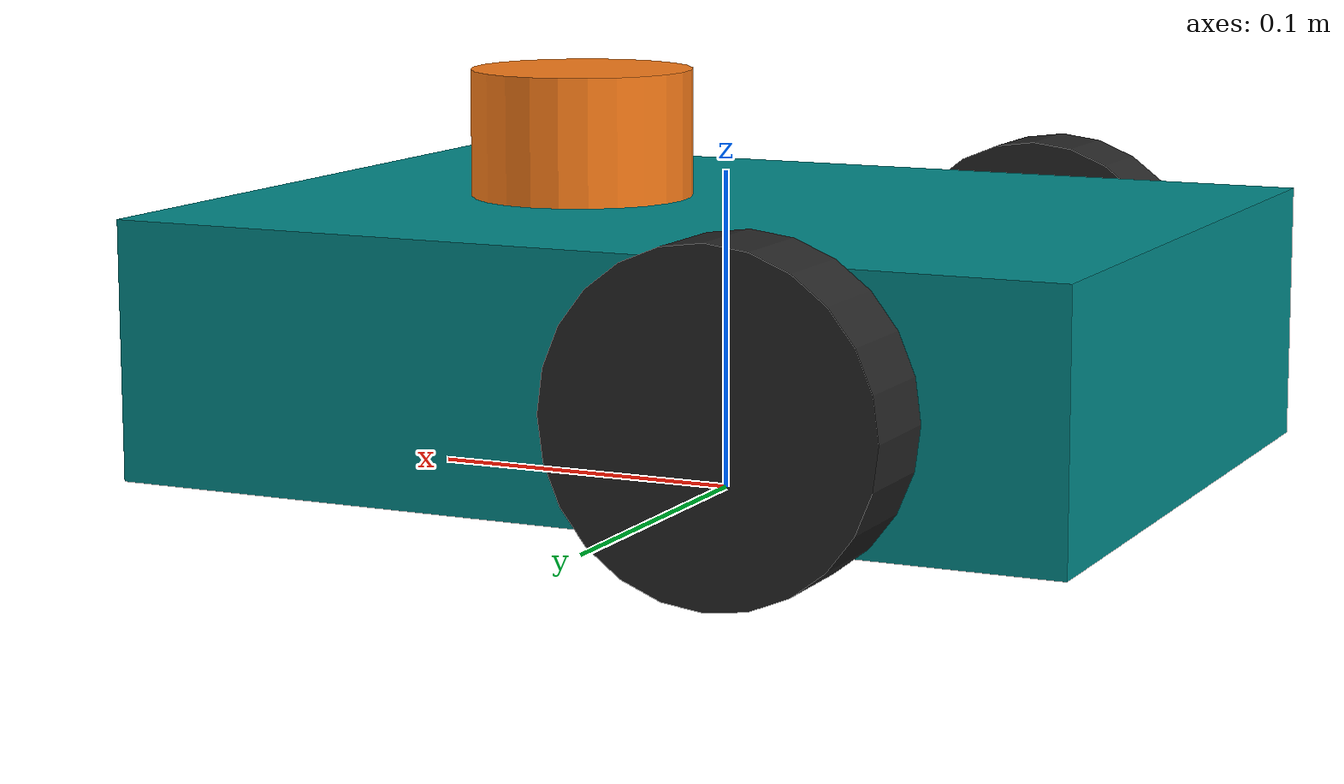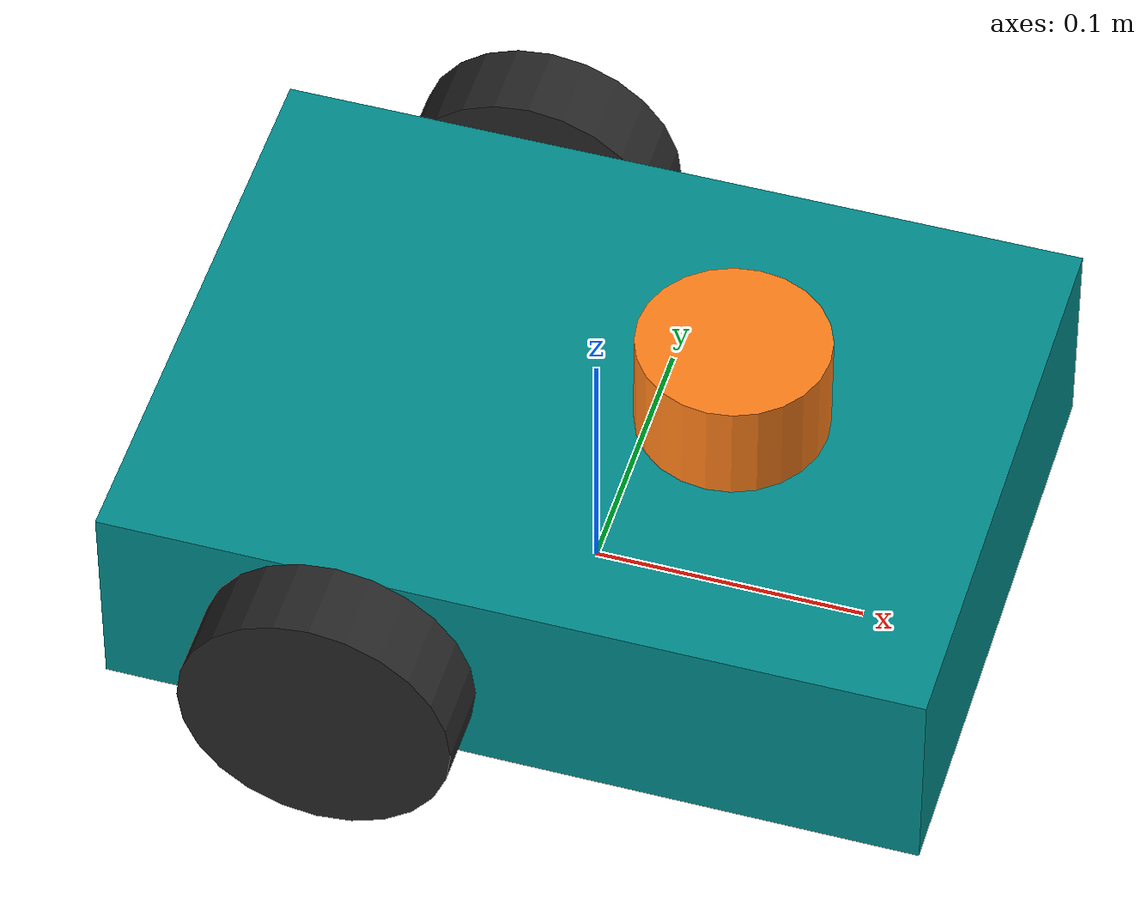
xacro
<?xml version="1.0"?>
<robot name="diffbot" xmlns:xacro="http://www.ros.org/wiki/xacro">

  <!-- ===== Dimensions [m, kg] ===== -->
  <xacro:property name="base_length" value="0.30"/>
  <xacro:property name="base_width" value="0.22"/>
  <xacro:property name="base_height" value="0.08"/>
  <xacro:property name="base_mass" value="2.0"/>
  <xacro:property name="wheel_radius" value="0.05"/>
  <xacro:property name="wheel_width" value="0.03"/>
  <xacro:property name="wheel_mass" value="0.2"/>
  <xacro:property name="wheel_separation" value="0.26"/>
  <xacro:property name="wheel_x_offset" value="-0.06"/>
  <xacro:property name="caster_radius" value="0.025"/>
  <xacro:property name="base_z" value="${wheel_radius}"/>

  <!-- ===== Inertia helpers ===== -->
  <xacro:macro name="box_inertia" params="m x y z">
    <inertia ixx="${m*(y*y+z*z)/12}" ixy="0" ixz="0"
             iyy="${m*(x*x+z*z)/12}" iyz="0" izz="${m*(x*x+y*y)/12}"/>
  </xacro:macro>
  <xacro:macro name="cylinder_inertia" params="m r h">
    <inertia ixx="${m*(3*r*r+h*h)/12}" ixy="0" ixz="0"
             iyy="${m*(3*r*r+h*h)/12}" iyz="0" izz="${m*r*r/2}"/>
  </xacro:macro>
  <xacro:macro name="sphere_inertia" params="m r">
    <inertia ixx="${2*m*r*r/5}" ixy="0" ixz="0" iyy="${2*m*r*r/5}" iyz="0" izz="${2*m*r*r/5}"/>
  </xacro:macro>

  <!-- ===== Materials ===== -->
  <material name="teal"><color rgba="0.0 0.55 0.55 1.0"/></material>
  <material name="dark"><color rgba="0.15 0.15 0.15 1.0"/></material>
  <material name="orange"><color rgba="1.0 0.5 0.1 1.0"/></material>

  <!-- ===== Links ===== -->
  <link name="base_footprint"/>

  <link name="base_link">
    <visual>
      <geometry><box size="${base_length} ${base_width} ${base_height}"/></geometry>
      <material name="teal"/>
    </visual>
    <collision>
      <geometry><box size="${base_length} ${base_width} ${base_height}"/></geometry>
    </collision>
    <inertial>
      <mass value="${base_mass}"/>
      <xacro:box_inertia m="${base_mass}" x="${base_length}" y="${base_width}" z="${base_height}"/>
    </inertial>
  </link>

  <joint name="base_joint" type="fixed">
    <parent link="base_footprint"/>
    <child link="base_link"/>
    <origin xyz="0 0 ${base_z}" rpy="0 0 0"/>
  </joint>

  <xacro:macro name="wheel" params="prefix y_sign">
    <link name="${prefix}_wheel">
      <visual>
        <origin rpy="${pi/2} 0 0"/>
        <geometry><cylinder radius="${wheel_radius}" length="${wheel_width}"/></geometry>
        <material name="dark"/>
      </visual>
      <collision>
        <!-- A sphere gives a single, stable contact point with the ground,
             which makes the wheels slip much less than a cylinder does. -->
        <geometry><sphere radius="${wheel_radius}"/></geometry>
      </collision>
      <inertial>
        <origin rpy="${pi/2} 0 0"/>
        <mass value="${wheel_mass}"/>
        <xacro:cylinder_inertia m="${wheel_mass}" r="${wheel_radius}" h="${wheel_width}"/>
      </inertial>
    </link>
    <joint name="${prefix}_wheel_joint" type="continuous">
      <parent link="base_link"/>
      <child link="${prefix}_wheel"/>
      <origin xyz="${wheel_x_offset} ${y_sign*wheel_separation/2} 0" rpy="0 0 0"/>
      <axis xyz="0 1 0"/>
    </joint>
    <gazebo reference="${prefix}_wheel">
      <mu1>1.0</mu1>
      <mu2>1.0</mu2>
    </gazebo>
  </xacro:macro>

  <xacro:wheel prefix="left" y_sign="1"/>
  <xacro:wheel prefix="right" y_sign="-1"/>

  <link name="caster">
    <visual>
      <geometry><sphere radius="${caster_radius}"/></geometry>
      <material name="dark"/>
    </visual>
    <collision>
      <geometry><sphere radius="${caster_radius}"/></geometry>
    </collision>
    <inertial>
      <mass value="0.05"/>
      <xacro:sphere_inertia m="0.05" r="${caster_radius}"/>
    </inertial>
  </link>
  <joint name="caster_joint" type="fixed">
    <parent link="base_link"/>
    <child link="caster"/>
    <origin xyz="${base_length/2 - caster_radius} 0 ${caster_radius - base_z}"/>
  </joint>
  <gazebo reference="caster">
    <!-- frictionless so the caster slides instead of fighting the wheels -->
    <mu1>0.0</mu1>
    <mu2>0.0</mu2>
  </gazebo>

  <link name="lidar_link">
    <visual>
      <geometry><cylinder radius="0.035" length="0.04"/></geometry>
      <material name="orange"/>
    </visual>
    <collision>
      <geometry><cylinder radius="0.035" length="0.04"/></geometry>
    </collision>
    <inertial>
      <mass value="0.1"/>
      <xacro:cylinder_inertia m="0.1" r="0.035" h="0.04"/>
    </inertial>
  </link>
  <joint name="lidar_joint" type="fixed">
    <parent link="base_link"/>
    <child link="lidar_link"/>
    <origin xyz="0.05 0 ${base_height/2 + 0.02}"/>
  </joint>

  <!-- ===== Gazebo plugins ===== -->
  <gazebo>
    <plugin filename="gz-sim-diff-drive-system" name="gz::sim::systems::DiffDrive">
      <left_joint>left_wheel_joint</left_joint>
      <right_joint>right_wheel_joint</right_joint>
      <wheel_separation>${wheel_separation}</wheel_separation>
      <wheel_radius>${wheel_radius}</wheel_radius>
      <max_linear_acceleration>1.0</max_linear_acceleration>
      <max_angular_acceleration>4.0</max_angular_acceleration>
      <topic>cmd_vel</topic>
      <odom_topic>odom</odom_topic>
      <tf_topic>tf</tf_topic>
      <frame_id>odom</frame_id>
      <child_frame_id>base_footprint</child_frame_id>
      <odom_publish_frequency>50</odom_publish_frequency>
    </plugin>
    <!-- Ground-truth pose from the simulator, to measure odometry drift. -->
    <plugin filename="gz-sim-odometry-publisher-system"
            name="gz::sim::systems::OdometryPublisher">
      <odom_frame>world</odom_frame>
      <robot_base_frame>base_footprint</robot_base_frame>
      <odom_topic>ground_truth/odom</odom_topic>
      <tf_topic>ground_truth/tf</tf_topic>
      <odom_publish_frequency>50</odom_publish_frequency>
      <dimensions>2</dimensions>
    </plugin>
    <plugin filename="gz-sim-joint-state-publisher-system"
            name="gz::sim::systems::JointStatePublisher">
      <topic>joint_states</topic>
    </plugin>
  </gazebo>

  <gazebo reference="lidar_link">
    <sensor name="lidar" type="gpu_lidar">
      <topic>scan</topic>
      <gz_frame_id>lidar_link</gz_frame_id>
      <update_rate>10</update_rate>
      <always_on>true</always_on>
      <visualize>true</visualize>
      <lidar>
        <scan>
          <horizontal>
            <samples>360</samples>
            <resolution>1</resolution>
            <min_angle>${-pi}</min_angle>
            <max_angle>${pi - 2*pi/360}</max_angle>
          </horizontal>
        </scan>
        <range>
          <min>0.12</min>
          <max>8.0</max>
          <resolution>0.01</resolution>
        </range>
        <noise>
          <type>gaussian</type>
          <mean>0.0</mean>
          <stddev>0.01</stddev>
        </noise>
      </lidar>
    </sensor>
  </gazebo>
</robot>
